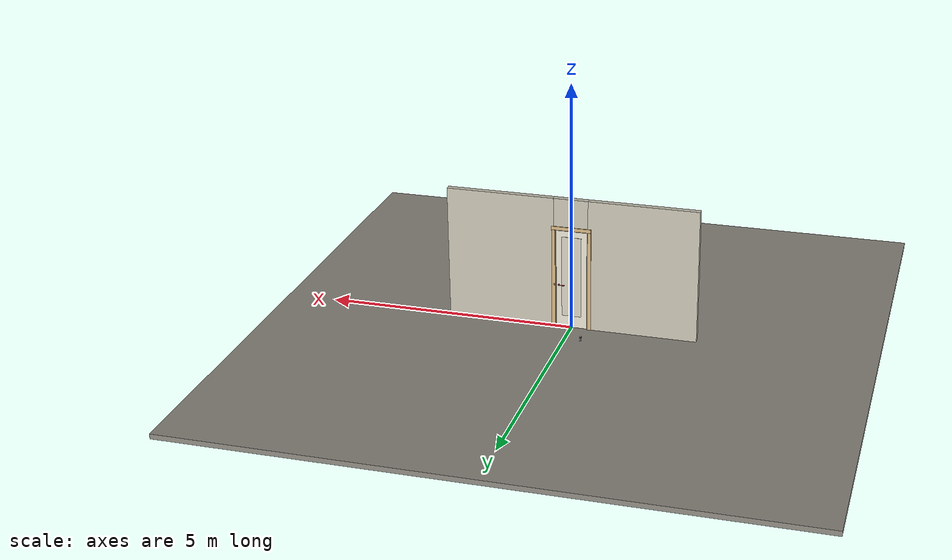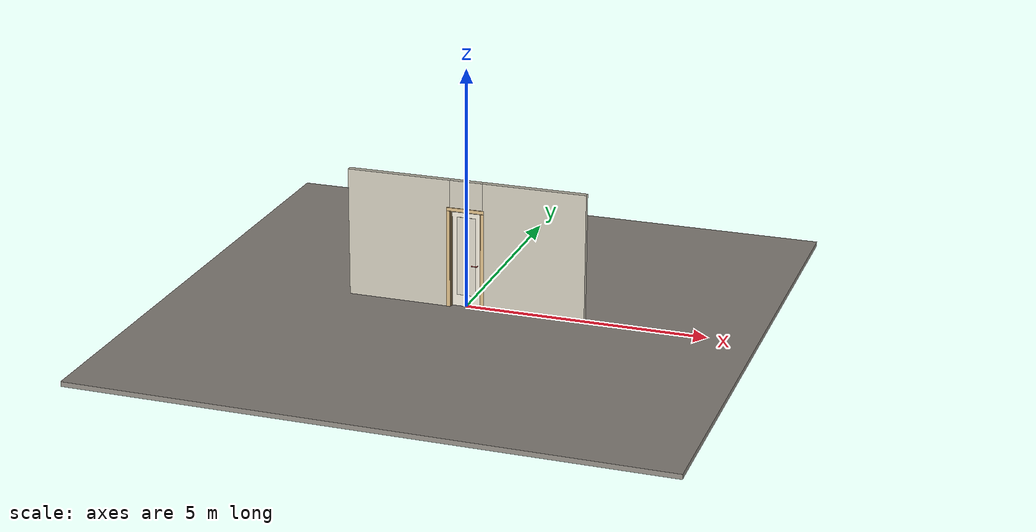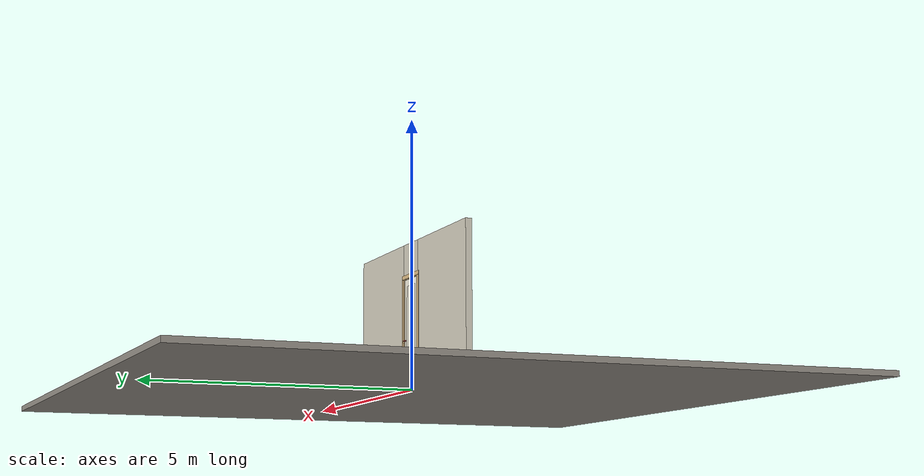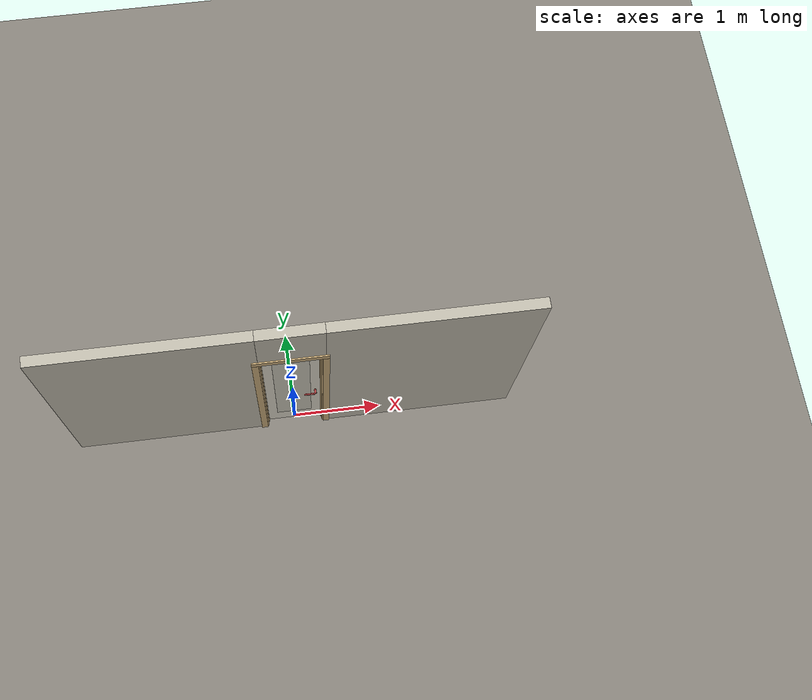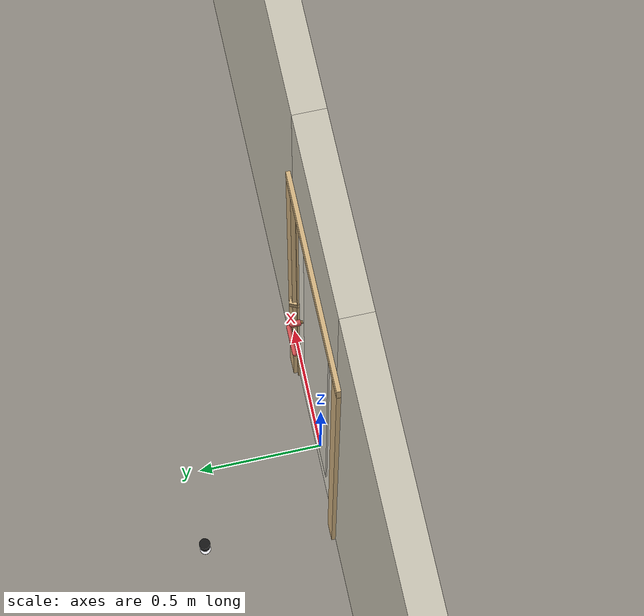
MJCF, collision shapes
<?xml version="1.0" ?>
<mujoco model="db0422_swing_single_full">
  <compiler angle="radian" meshdir="../../hardware" texturedir="../../textures" autolimits="true" inertiafromgeom="false"/>
  <option timestep="0.002" integrator="implicitfast" cone="elliptic" impratio="10" noslip_iterations="3">
    <flag multiccd="enable"/>
  </option>
  <size memory="16M"/>
  <default>
    <geom condim="4" solref="0.005 1" solimp="0.95 0.99 0.001"/>
    <joint solreflimit="0.005 1" solimplimit="0.95 0.99 0.001"/>
    <tendon solreflimit="0.005 1"/>
    <equality solref="0.002 1"/>
  </default>
  <visual>
    <headlight ambient="0.4 0.4 0.4" diffuse="0.7 0.7 0.7" specular="0.2 0.2 0.2"/>
    <quality shadowsize="4096"/>
    <map znear="0.01" zfar="60"/>
  </visual>
  <asset>
    <mesh name="hinge_9ae1f9b7de" file="hinge_9ae1f9b7de.obj"/>
    <mesh name="hinge_jamb_50e97ebc96" file="hinge_jamb_50e97ebc96.obj"/>
    <mesh name="lever_9f02b544cf" file="lever_9f02b544cf.obj"/>
    <material name="mat_floor" rgba="0.55 0.53 0.5 1" specular="0.2" shininess="0.15" reflectance="0"/>
    <material name="mat_wall" rgba="0.78 0.76 0.7 1" specular="0.2" shininess="0.1" reflectance="0"/>
    <material name="mat_leaf" rgba="0.9 0.88 0.82 1" specular="0.2" shininess="0.55" reflectance="0"/>
    <material name="mat_leaf_panel" rgba="0.828 0.81 0.754 1" specular="0.2" shininess="0.55" reflectance="0"/>
    <material name="mat_hinge" rgba="0.65 0.66 0.68 1" specular="0.74" shininess="0.5" reflectance="0.36"/>
    <material name="mat_op_brass_antique" rgba="0.55 0.42 0.22 1" specular="0.74" shininess="0.45" reflectance="0.36"/>
    <material name="mat_trim" rgba="0.85 0.66 0.3 1" specular="0.8" shininess="0.75" reflectance="0.4"/>
    <material name="mat_bolt" rgba="0.85 0.66 0.3 1" specular="0.8" shininess="0.75" reflectance="0.4"/>
    <material name="mat_frame" rgba="0.82 0.7 0.5 1" specular="0.2" shininess="0.45" reflectance="0"/>
    <material name="mat_bumper_stop" rgba="0.08 0.08 0.08 1" specular="0.2" shininess="0.1" reflectance="0"/>
    <material name="mat_stop_base" rgba="0.9 0.9 0.92 1" specular="0.8" shininess="0.9" reflectance="0.4"/>
    <texture name="skybox" type="skybox" builtin="gradient" rgb1="0.6 0.7 0.85" rgb2="0.9 0.92 0.95" width="256" height="256"/>
  </asset>
  <worldbody>
    <light name="sun" pos="1.5 -2.5 4" dir="-0.3 0.5 -0.8" directional="true" diffuse="0.8 0.8 0.8" specular="0.3 0.3 0.3" castshadow="true"/>
    <light name="fill" pos="-1.5 2.5 3" dir="0.3 -0.5 -0.7" directional="true" diffuse="0.35 0.35 0.4" castshadow="false"/>
    <camera name="robot_view" pos="0 -2.575187 1.734312" xyaxes="1 0 0 0 0.26963 0.962964" fovy="52"/>
    <camera name="far_view" pos="0 2.509187 1.734312" xyaxes="-1 0 0 0 -0.26963 0.962964" fovy="52"/>
    <camera name="iso" pos="1.932062 -2.168438 2.141063" xyaxes="0.741536 0.670913 0 -0.242917 0.268487 0.932151" fovy="46"/>
    <camera name="detail_handle" pos="0.3245 -0.8725 1.194" xyaxes="0.97561 0.219512 0 -0.070934 0.315262 0.94635" fovy="38"/>
    <geom name="floor" type="box" size="6 6 0.05" pos="0 0 -0.05" material="mat_floor" group="0" contype="1" conaffinity="1" friction="0.8 0.005 0.0001" density="2400"/>
    <geom name="wall_left" type="box" size="1.08625 0.0575 1.35" pos="-1.41375 -0.033 1.35" material="mat_wall" group="0" contype="1" conaffinity="1" friction="0.6 0.005 0.0001" density="800"/>
    <geom name="wall_right" type="box" size="1.07125 0.0575 1.35" pos="1.42875 -0.033 1.35" material="mat_wall" group="0" contype="1" conaffinity="1" friction="0.6 0.005 0.0001" density="800"/>
    <geom name="wall_header" type="box" size="0.3425 0.0575 0.303" pos="0.015 -0.033 2.397" material="mat_wall" group="0" contype="1" conaffinity="1" friction="0.6 0.005 0.0001" density="800"/>
    <geom name="hinge_0_jamb" type="mesh" mesh="hinge_jamb_50e97ebc96" pos="-0.3055 0.0245 0.259" quat="0 1 0 0" material="mat_hinge" group="1" contype="0" conaffinity="0" density="7850"/>
    <geom name="hinge_1_jamb" type="mesh" mesh="hinge_jamb_50e97ebc96" pos="-0.3055 0.0245 1.025" quat="0 1 0 0" material="mat_hinge" group="1" contype="0" conaffinity="0" density="7850"/>
    <geom name="hinge_2_jamb" type="mesh" mesh="hinge_jamb_50e97ebc96" pos="-0.3055 0.0245 1.861" quat="0 1 0 0" material="mat_hinge" group="1" contype="0" conaffinity="0" density="7850"/>
    <geom name="jamb_hinge" type="box" size="0.0095 0.0575 1.0225" pos="-0.318 -0.033 1.0225" material="mat_frame" group="0" contype="1" conaffinity="1" friction="0.6 0.005 0.0001" density="400"/>
    <geom name="strike_914_wall_n" type="box" size="0.0245 0.041325 0.0167" pos="0.333 -0.049175 0.914" material="mat_frame" group="0" contype="1" conaffinity="1" friction="0.6 0.005 0.0001" density="400"/>
    <geom name="strike_914_wall_p" type="box" size="0.0245 0.008 0.0167" pos="0.333 0.01585 0.914" material="mat_frame" group="0" contype="1" conaffinity="1" friction="0.6 0.005 0.0001" density="400"/>
    <geom name="strike_914_ramp" type="box" size="0.0245 0.01649 0.0167" pos="0.337636 0.028673 0.914" quat="0.977148 0 0 -0.212558" material="mat_frame" group="0" contype="1" conaffinity="1" friction="0.12 0.005 0.0001" density="400"/>
    <geom name="strike_914_back" type="box" size="0.01615 0.00785 0.0167" pos="0.34135 0 0.914" material="mat_frame" group="0" contype="1" conaffinity="1" friction="0.6 0.005 0.0001" density="400"/>
    <geom name="jamb_strike_0" type="box" size="0.0245 0.0575 0.44865" pos="0.333 -0.033 0.44865" material="mat_frame" group="0" contype="1" conaffinity="1" friction="0.6 0.005 0.0001" density="400"/>
    <geom name="jamb_strike_1" type="box" size="0.0245 0.0575 0.55715" pos="0.333 -0.033 1.48785" material="mat_frame" group="0" contype="1" conaffinity="1" friction="0.6 0.005 0.0001" density="400"/>
    <geom name="jamb_head" type="box" size="0.3425 0.0575 0.0095" pos="0.015 -0.033 2.0545" material="mat_frame" group="0" contype="1" conaffinity="1" friction="0.6 0.005 0.0001" density="400"/>
    <geom name="head_stud" type="box" size="0.3425 0.0575 0.015" pos="0.015 -0.033 2.079" material="mat_wall" group="0" contype="1" conaffinity="1" friction="0.6 0.005 0.0001" density="500"/>
    <geom name="stop_hinge" type="box" size="0.0055 0.016 1.0225" pos="-0.303 -0.034 1.0225" material="mat_frame" group="0" contype="1" conaffinity="1" friction="0.6 0.005 0.0001" density="400"/>
    <geom name="stop_strike" type="box" size="0.0055 0.016 1.0225" pos="0.303 -0.034 1.0225" material="mat_frame" group="0" contype="1" conaffinity="1" friction="0.6 0.005 0.0001" density="400"/>
    <geom name="stop_head" type="box" size="0.3085 0.016 0.0055" pos="0 -0.034 2.0395" material="mat_frame" group="0" contype="1" conaffinity="1" friction="0.6 0.005 0.0001" density="400"/>
    <geom name="casing_l_n" type="box" size="0.035 0.008 1.032" pos="-0.3575 -0.0985 1.0225" material="mat_frame" group="2" contype="0" conaffinity="0" density="400"/>
    <geom name="casing_r_n" type="box" size="0.035 0.008 1.032" pos="0.3575 -0.0985 1.0225" material="mat_frame" group="2" contype="0" conaffinity="0" density="400"/>
    <geom name="casing_h_n" type="box" size="0.3925 0.008 0.035" pos="0 -0.0985 2.094" material="mat_frame" group="2" contype="0" conaffinity="0" density="400"/>
    <geom name="casing_l_p" type="box" size="0.035 0.008 1.032" pos="-0.3575 0.0325 1.0225" material="mat_frame" group="2" contype="0" conaffinity="0" density="400"/>
    <geom name="casing_r_p" type="box" size="0.035 0.008 1.032" pos="0.3575 0.0325 1.0225" material="mat_frame" group="2" contype="0" conaffinity="0" density="400"/>
    <geom name="casing_h_p" type="box" size="0.3925 0.008 0.035" pos="0 0.0325 2.094" material="mat_frame" group="2" contype="0" conaffinity="0" density="400"/>
    <geom name="door_stop_base" type="cylinder" size="0.022 0.003" pos="-0.3215 0.543 0.003" material="mat_stop_base" group="0" contype="1" conaffinity="1" friction="0.6 0.005 0.0001" density="7850"/>
    <geom name="door_stop_post" type="cylinder" size="0.012 0.0245" pos="-0.3215 0.543 0.0305" material="mat_stop_base" group="0" contype="1" conaffinity="1" friction="0.6 0.005 0.0001" density="7850"/>
    <geom name="door_stop_bumper" type="cylinder" size="0.022 0.02" pos="-0.3215 0.543 0.075" material="mat_bumper_stop" group="0" contype="1" conaffinity="1" friction="0.6 0.005 0.0001" density="1100"/>
    <site name="approach_point" pos="0 -1.5 0" quat="1 0 0 0" size="0.05" rgba="0.2 0.9 0.2 0.5" group="4"/>
    <site name="goal_point" pos="0 1.5 0" quat="1 0 0 0" size="0.05" rgba="0.2 0.9 0.2 0.5" group="4"/>
    <site name="door_plane_center" pos="0 0 1.0225" quat="1 0 0 0" size="0.02" rgba="0.2 0.9 0.2 0.5" group="4"/>
    <body name="leaf" pos="-0.3085 0 0">
      <inertial pos="0.29898 0.000635 1.025623" mass="11.247183" quat="0.501237 0.49835 -0.501626 0.498779" diaginertia="0.371406503 3.89527702 4.264161703"/>
      <joint name="leaf_hinge" type="hinge" axis="0 0 1" pos="0.003 0.0245 0" limited="true" range="0 1.570796" damping="0.100811" frictionloss="6.141368" armature="0.02"/>
      <geom name="leaf_slab" type="box" size="0.305 0.0175 1.016" pos="0.308 0 1.025" material="mat_leaf" group="0" contype="1" conaffinity="1" friction="0.35 0.005 0.0001" density="1"/>
      <geom name="leaf_panel_0_n" type="box" size="0.195 0.003 0.83344" pos="0.308 -0.0205 1.08596" material="mat_leaf_panel" group="1" contype="0" conaffinity="0" density="1"/>
      <geom name="leaf_panel_0_p" type="box" size="0.195 0.003 0.83344" pos="0.308 0.0205 1.08596" material="mat_leaf_panel" group="1" contype="0" conaffinity="0" density="1"/>
      <geom name="hinge_0" type="mesh" mesh="hinge_9ae1f9b7de" pos="0.003 0.0245 0.259" quat="0 1 0 0" material="mat_hinge" group="1" contype="0" conaffinity="0" density="7850"/>
      <geom name="hinge_1" type="mesh" mesh="hinge_9ae1f9b7de" pos="0.003 0.0245 1.025" quat="0 1 0 0" material="mat_hinge" group="1" contype="0" conaffinity="0" density="7850"/>
      <geom name="hinge_2" type="mesh" mesh="hinge_9ae1f9b7de" pos="0.003 0.0245 1.861" quat="0 1 0 0" material="mat_hinge" group="1" contype="0" conaffinity="0" density="7850"/>
      <geom name="leaf_latch_bolt_faceplate" type="box" size="0.0006 0.01235 0.0267" pos="0.6124 0 0.914" material="mat_bolt" group="1" contype="0" conaffinity="0" density="8500"/>
      <site name="leaf_edge_mid" pos="0.613 0 1.016" quat="1 0 0 0" size="0.02" rgba="0.2 0.9 0.2 0.5" group="4"/>
      <body name="leaf_handle" pos="0.553 0 0.914">
        <inertial pos="-0.028779 0 0" mass="0.970196" quat="0 0.707107 0.707107 0" diaginertia="0.001765339 0.003138972 0.004726252"/>
        <joint name="leaf_handle_hinge" type="hinge" axis="0 -1 0" limited="true" range="0 0.96" damping="0.20055" frictionloss="0.046" stiffness="0.8" springref="-0.577217" armature="0.01"/>
        <geom name="leaf_handle_spindle" type="cylinder" size="0.006 0.0255" pos="0 0 0" quat="0.707107 -0.707107 0 0" material="mat_op_brass_antique" group="1" contype="0" conaffinity="0" density="7850"/>
        <geom name="leaf_handle_lever_n" type="mesh" mesh="lever_9f02b544cf" pos="0 -0.0175 0" quat="0.707107 0.707107 0 0" material="mat_op_brass_antique" group="1" contype="0" conaffinity="0" density="3000"/>
        <geom name="leaf_handle_lever_col_n" type="capsule" size="0.0095 0.053" pos="-0.0625 -0.0725 0" quat="0.707107 0 -0.707107 0" material="mat_op_brass_antique" group="3" contype="1" conaffinity="1" rgba="0.8 0.3 0.3 0.25" friction="0.7 0.01 0.0001" density="3000"/>
        <geom name="leaf_handle_hub_col_n" type="cylinder" size="0.012 0.022" pos="0 -0.0475 0" quat="0.707107 -0.707107 0 0" material="mat_op_brass_antique" group="3" contype="1" conaffinity="1" rgba="0.8 0.3 0.3 0.25" friction="0.6 0.005 0.0001" density="3000"/>
        <geom name="leaf_handle_lever_p" type="mesh" mesh="lever_9f02b544cf" pos="0 0.0175 0" quat="-0.707107 0.707107 0 0" material="mat_op_brass_antique" group="1" contype="0" conaffinity="0" density="3000"/>
        <geom name="leaf_handle_lever_col_p" type="capsule" size="0.0095 0.053" pos="-0.0625 0.0725 0" quat="0.707107 0 -0.707107 0" material="mat_op_brass_antique" group="3" contype="1" conaffinity="1" rgba="0.8 0.3 0.3 0.25" friction="0.7 0.01 0.0001" density="3000"/>
        <geom name="leaf_handle_hub_col_p" type="cylinder" size="0.012 0.022" pos="0 0.0475 0" quat="0.707107 -0.707107 0 0" material="mat_op_brass_antique" group="3" contype="1" conaffinity="1" rgba="0.8 0.3 0.3 0.25" friction="0.6 0.005 0.0001" density="3000"/>
        <site name="leaf_handle_grip_n" pos="-0.1 -0.0725 0" quat="1 0 0 0" size="0.012" rgba="0.2 0.9 0.2 0.5" group="4"/>
        <site name="leaf_handle_grip_p" pos="-0.1 0.0725 0" quat="1 0 0 0" size="0.012" rgba="0.2 0.9 0.2 0.5" group="4"/>
      </body>
      <body name="leaf_latch_bolt" pos="0.613 0 0.914">
        <inertial pos="-0.00865 0 0" mass="0.041419" quat="0.92388 -0.382683 0 0" diaginertia="0.000000798 0.000005598 0.000005598"/>
        <joint name="leaf_latch_bolt_slide" type="slide" axis="-1 0 0" limited="true" range="0 0.0127" damping="2" frictionloss="0.3" stiffness="300" springref="-0.008333" armature="0.1"/>
        <geom name="leaf_latch_bolt_capsule" type="capsule" size="0.00635 0.015" pos="-0.00865 0 0" quat="0.707107 0 0.707107 0" material="mat_bolt" group="0" contype="1" conaffinity="1" friction="0.2 0.005 0.0001" density="8500"/>
      </body>
    </body>
  </worldbody>
  <tendon>
    <fixed name="leaf_latch_bolt_coupling" limited="true" range="0 10">
      <joint joint="leaf_latch_bolt_slide" coef="1"/>
      <joint joint="leaf_handle_hinge" coef="-0.016711"/>
    </fixed>
  </tendon>
  <sensor>
    <jointpos name="leaf_hinge_pos" joint="leaf_hinge"/>
    <jointvel name="leaf_hinge_vel" joint="leaf_hinge"/>
    <jointpos name="leaf_handle_hinge_pos" joint="leaf_handle_hinge"/>
    <jointvel name="leaf_handle_hinge_vel" joint="leaf_handle_hinge"/>
    <jointpos name="leaf_latch_bolt_slide_pos" joint="leaf_latch_bolt_slide"/>
    <jointvel name="leaf_latch_bolt_slide_vel" joint="leaf_latch_bolt_slide"/>
  </sensor>
</mujoco>
